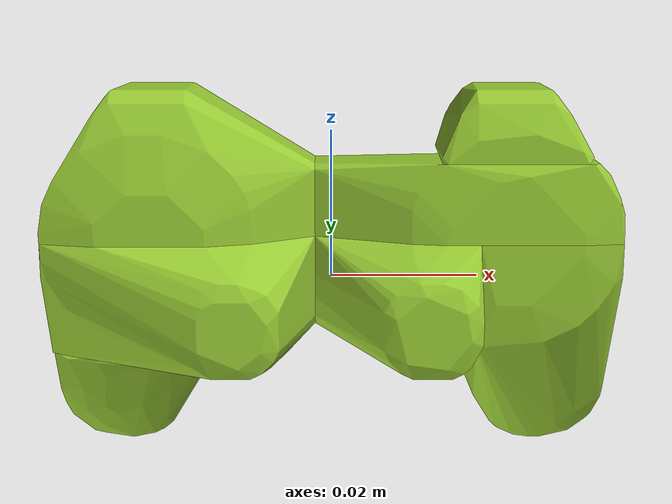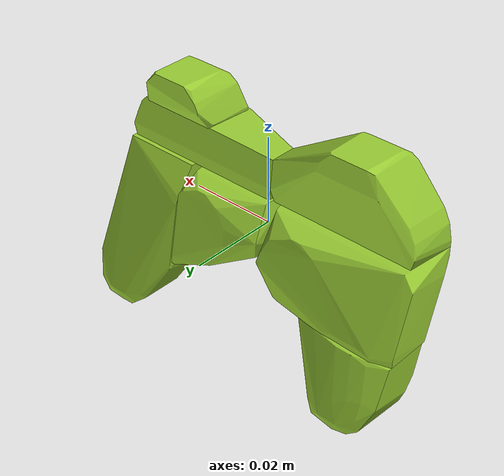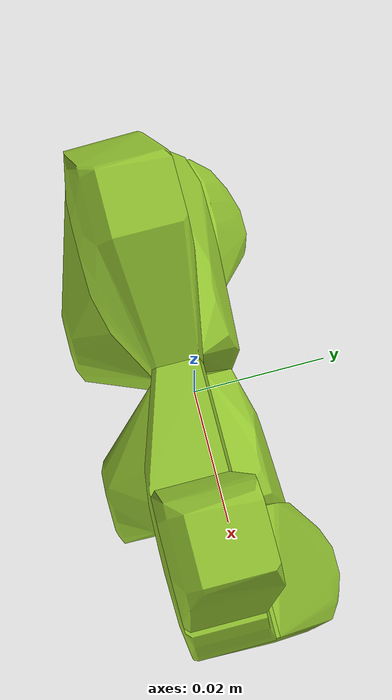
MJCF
<mujoco model="shapenetsem14">
  <asset>
    <mesh file="meshes/shapenetsem14/shapenetsem14_0.stl" name="shapenetsem14_0" scale="0.8 0.8 0.8"/>
    <mesh file="meshes/shapenetsem14/shapenetsem14_1.stl" name="shapenetsem14_1" scale="0.8 0.8 0.8"/>
    <mesh file="meshes/shapenetsem14/shapenetsem14_2.stl" name="shapenetsem14_2" scale="0.8 0.8 0.8"/>
    <mesh file="meshes/shapenetsem14/shapenetsem14_3.stl" name="shapenetsem14_3" scale="0.8 0.8 0.8"/>
    <mesh file="meshes/shapenetsem14/shapenetsem14_4.stl" name="shapenetsem14_4" scale="0.8 0.8 0.8"/>
    <mesh file="meshes/shapenetsem14/shapenetsem14_5.stl" name="shapenetsem14_5" scale="0.8 0.8 0.8"/>
    <mesh file="meshes/shapenetsem14/shapenetsem14_6.stl" name="shapenetsem14_6" scale="0.8 0.8 0.8"/>
  </asset>
  <worldbody>
    <body>
      <body name="collision">
        <geom pos="0 0 0" mesh="shapenetsem14_0" type="mesh" solimp="0.998 0.998 0.001" solref="0.001 1" density="100" friction="0.95 0.3 0.1" rgba="0.6 0.8 0.2 1" group="1" condim="4"/>
        <geom pos="0 0 0" mesh="shapenetsem14_1" type="mesh" solimp="0.998 0.998 0.001" solref="0.001 1" density="100" friction="0.95 0.3 0.1" rgba="0.6 0.8 0.2 1" group="1" condim="4"/>
        <geom pos="0 0 0" mesh="shapenetsem14_2" type="mesh" solimp="0.998 0.998 0.001" solref="0.001 1" density="100" friction="0.95 0.3 0.1" rgba="0.6 0.8 0.2 1" group="1" condim="4"/>
        <geom pos="0 0 0" mesh="shapenetsem14_3" type="mesh" solimp="0.998 0.998 0.001" solref="0.001 1" density="100" friction="0.95 0.3 0.1" rgba="0.6 0.8 0.2 1" group="1" condim="4"/>
        <geom pos="0 0 0" mesh="shapenetsem14_4" type="mesh" solimp="0.998 0.998 0.001" solref="0.001 1" density="100" friction="0.95 0.3 0.1" rgba="0.6 0.8 0.2 1" group="1" condim="4"/>
        <geom pos="0 0 0" mesh="shapenetsem14_5" type="mesh" solimp="0.998 0.998 0.001" solref="0.001 1" density="100" friction="0.95 0.3 0.1" rgba="0.6 0.8 0.2 1" group="1" condim="4"/>
        <geom pos="0 0 0" mesh="shapenetsem14_6" type="mesh" solimp="0.998 0.998 0.001" solref="0.001 1" density="100" friction="0.95 0.3 0.1" rgba="0.6 0.8 0.2 1" group="1" condim="4"/>
      </body>
      <body name="visual">
        <geom pos="0 0 0" mesh="shapenetsem14_0" type="mesh" rgba="0.04 0.14 0.02 1" conaffinity="0" contype="0" group="0" mass="0.0001"/>
        <geom pos="0 0 0" mesh="shapenetsem14_1" type="mesh" rgba="0.04 0.14 0.02 1" conaffinity="0" contype="0" group="0" mass="0.0001"/>
        <geom pos="0 0 0" mesh="shapenetsem14_2" type="mesh" rgba="0.04 0.14 0.02 1" conaffinity="0" contype="0" group="0" mass="0.0001"/>
        <geom pos="0 0 0" mesh="shapenetsem14_3" type="mesh" rgba="0.04 0.14 0.02 1" conaffinity="0" contype="0" group="0" mass="0.0001"/>
        <geom pos="0 0 0" mesh="shapenetsem14_4" type="mesh" rgba="0.04 0.14 0.02 1" conaffinity="0" contype="0" group="0" mass="0.0001"/>
        <geom pos="0 0 0" mesh="shapenetsem14_5" type="mesh" rgba="0.04 0.14 0.02 1" conaffinity="0" contype="0" group="0" mass="0.0001"/>
        <geom pos="0 0 0" mesh="shapenetsem14_6" type="mesh" rgba="0.04 0.14 0.02 1" conaffinity="0" contype="0" group="0" mass="0.0001"/>
      </body>
      <site rgba="0 0 0 0" size="0.005" pos="0 0 -0.06" name="bottom_site"/>
      <site rgba="0 0 0 0" size="0.005" pos="0 0 0.04" name="top_site"/>
      <site rgba="0 0 0 0" size="0.005" pos="0.025 0.025 0" name="horizontal_radius_site"/>
    </body>
  </worldbody>
</mujoco>
